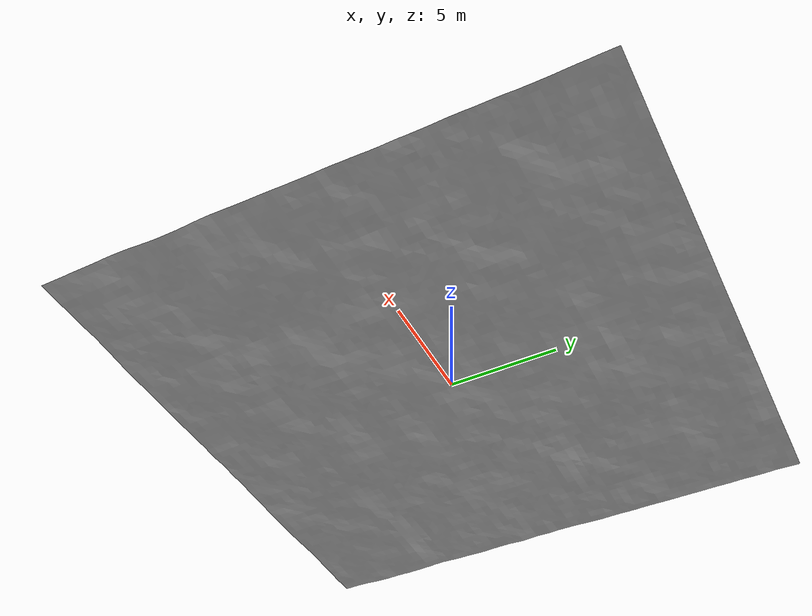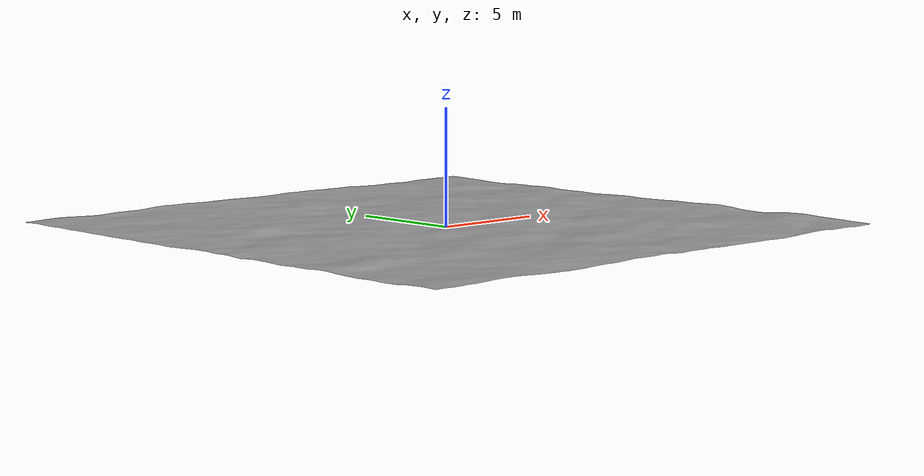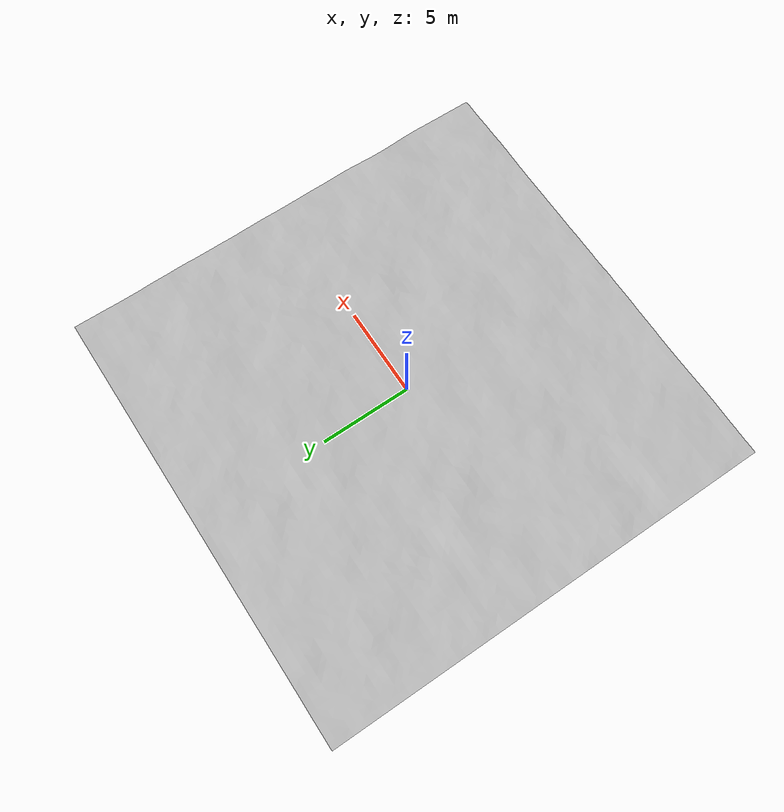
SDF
<?xml version="1.0" ?>
<sdf version="1.6">
  <model name="heightmap1">
    <static>true</static>
    <link name="link">
      <collision name="collision">
        <geometry>
          <mesh>
            <uri>model://heightmap1/meshes/heightmap.dae</uri>
          </mesh>
        </geometry>
      </collision>
      <visual name="visual">
        <geometry>
          <mesh>
            <uri>model://heightmap1/meshes/heightmap.dae</uri>
          </mesh>
        </geometry>
      </visual>
    </link>
  </model>
</sdf>
